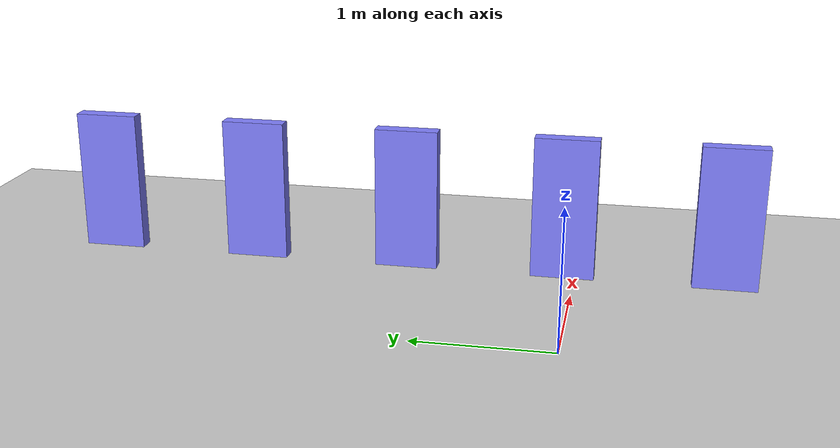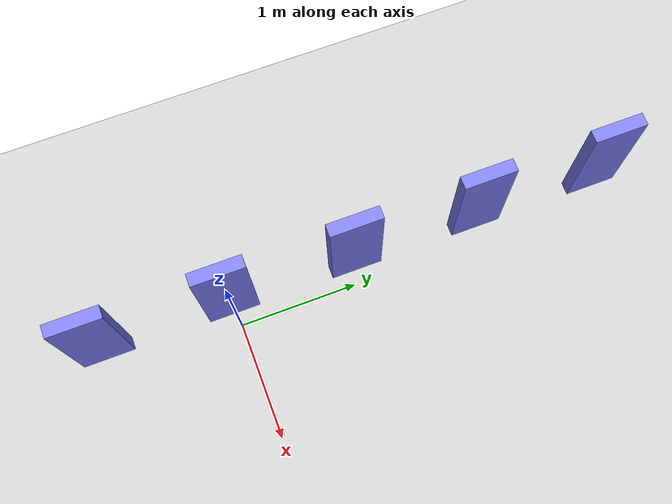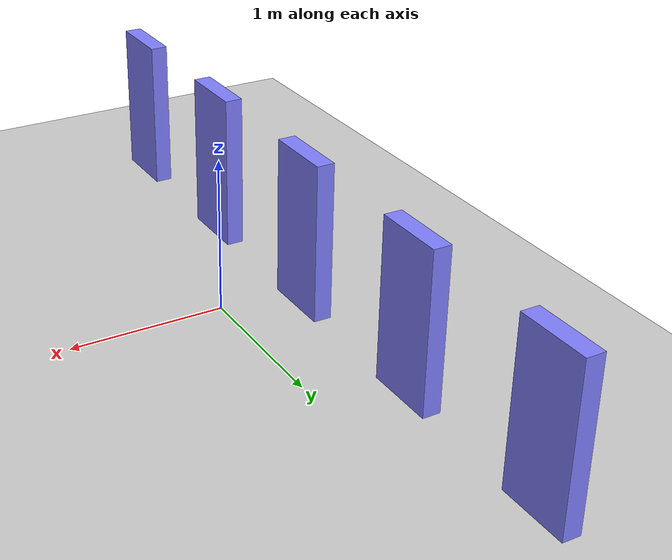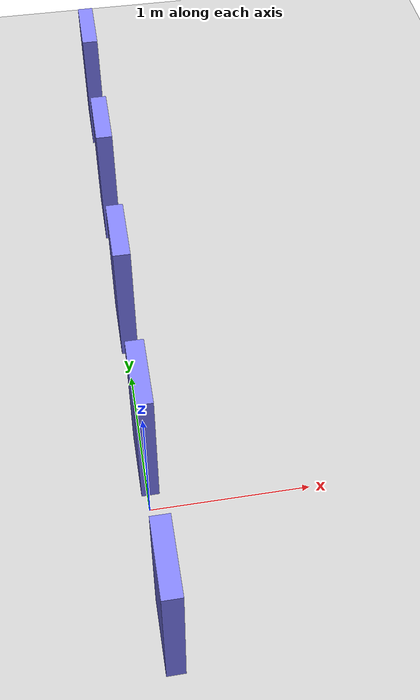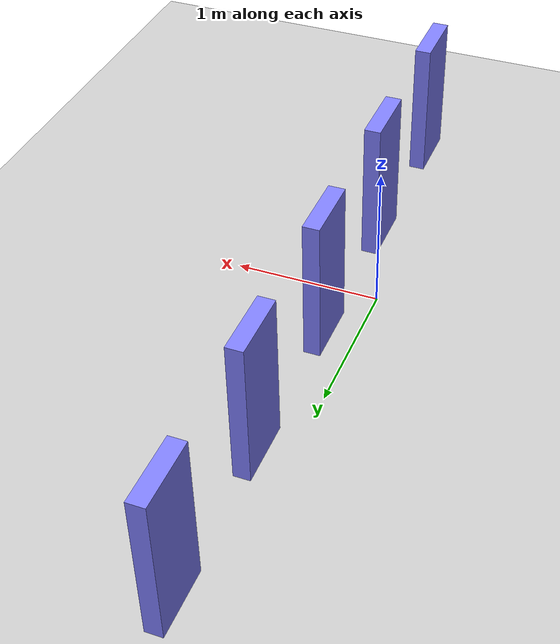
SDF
<?xml version="1.0" ?>
<sdf version="1.11">
  <world name="velocity_control">

    <physics name="1ms" type="ignored">
      <max_step_size>0.001</max_step_size>
      <real_time_factor>1.0</real_time_factor>
    </physics>
    <plugin
      filename="gz-sim-physics-system"
      name="gz::sim::systems::Physics">
    </plugin>
    <plugin
      filename="gz-sim-user-commands-system"
      name="gz::sim::systems::UserCommands">
    </plugin>
    <plugin
      filename="gz-sim-scene-broadcaster-system"
      name="gz::sim::systems::SceneBroadcaster">
    </plugin>

    <light type="directional" name="sun">
      <cast_shadows>true</cast_shadows>
      <pose>0 0 10 0 0 0</pose>
      <diffuse>1 1 1 1</diffuse>
      <specular>0.5 0.5 0.5 1</specular>
      <attenuation>
        <range>1000</range>
        <constant>0.9</constant>
        <linear>0.01</linear>
        <quadratic>0.001</quadratic>
      </attenuation>
      <direction>-0.5 0.1 -0.9</direction>
    </light>

    <model name="ground_plane">
      <static>true</static>
      <link name="link">
        <collision name="collision">
          <geometry>
            <plane>
              <normal>0 0 1</normal>
              <size>100 100</size>
            </plane>
          </geometry>
        </collision>
        <visual name="visual">
          <geometry>
            <plane>
              <normal>0 0 1</normal>
              <size>100 100</size>
            </plane>
          </geometry>
          <material>
            <ambient>0.8 0.8 0.8 1</ambient>
            <diffuse>0.8 0.8 0.8 1</diffuse>
            <specular>0.8 0.8 0.8 1</specular>
          </material>
        </visual>
      </link>
    </model>

    <model name="default_persistent_zero_velocity">
      <pose>0 0 1.0 0 0 0</pose>
      <link name="box_1x4x9">
        <inertial auto="true"/>
        <visual name="visual">
          <geometry>
            <box>
              <size>0.1 0.4 0.9</size>
            </box>
          </geometry>
          <material>
            <ambient>0.5 0.5 1.0 1</ambient>
            <diffuse>0.5 0.5 1.0 1</diffuse>
            <specular>0.0 0.0 1.0 1</specular>
          </material>
        </visual>
        <collision name="collision">
          <geometry>
            <box>
              <size>0.1 0.4 0.9</size>
            </box>
          </geometry>
        </collision>
      </link>
      <plugin
        filename="gz-sim-velocity-control-system"
        name="gz::sim::systems::VelocityControl">
      </plugin>
    </model>

    <model name="persistent_zero_velocity">
      <pose>0 1 1.0 0 0 0</pose>
      <link name="box_1x4x9">
        <inertial auto="true"/>
        <visual name="visual">
          <geometry>
            <box>
              <size>0.1 0.4 0.9</size>
            </box>
          </geometry>
          <material>
            <ambient>0.5 0.5 1.0 1</ambient>
            <diffuse>0.5 0.5 1.0 1</diffuse>
            <specular>0.0 0.0 1.0 1</specular>
          </material>
        </visual>
        <collision name="collision">
          <geometry>
            <box>
              <size>0.1 0.4 0.9</size>
            </box>
          </geometry>
        </collision>
      </link>
      <plugin
        filename="gz-sim-velocity-control-system"
        name="gz::sim::systems::VelocityControl">
        <initial_angular>0 0 0</initial_angular>
        <initial_linear>0 0 0</initial_linear>
      </plugin>
    </model>

    <model name="explicit_persistent_zero_velocity">
      <pose>0 2 1.0 0 0 0</pose>
      <link name="box_1x4x9">
        <inertial auto="true"/>
        <visual name="visual">
          <geometry>
            <box>
              <size>0.1 0.4 0.9</size>
            </box>
          </geometry>
          <material>
            <ambient>0.5 0.5 1.0 1</ambient>
            <diffuse>0.5 0.5 1.0 1</diffuse>
            <specular>0.0 0.0 1.0 1</specular>
          </material>
        </visual>
        <collision name="collision">
          <geometry>
            <box>
              <size>0.1 0.4 0.9</size>
            </box>
          </geometry>
        </collision>
      </link>
      <plugin
        filename="gz-sim-velocity-control-system"
        name="gz::sim::systems::VelocityControl">
        <initial_angular persistent="true">0 0 0</initial_angular>
        <initial_linear persistent="true">0 0 0</initial_linear>
      </plugin>
    </model>

    <model name="initial_zero_velocity">
      <pose>0 3 1.0 0 0 0</pose>
      <link name="box_1x4x9">
        <inertial auto="true"/>
        <visual name="visual">
          <geometry>
            <box>
              <size>0.1 0.4 0.9</size>
            </box>
          </geometry>
          <material>
            <ambient>0.5 0.5 1.0 1</ambient>
            <diffuse>0.5 0.5 1.0 1</diffuse>
            <specular>0.0 0.0 1.0 1</specular>
          </material>
        </visual>
        <collision name="collision">
          <geometry>
            <box>
              <size>0.1 0.4 0.9</size>
            </box>
          </geometry>
        </collision>
      </link>
      <plugin
        filename="gz-sim-velocity-control-system"
        name="gz::sim::systems::VelocityControl">
        <initial_angular persistent="false">0 0 0</initial_angular>
        <initial_linear persistent="false">0 0 0</initial_linear>
      </plugin>
    </model>

    <model name="initial_nonzero_velocity">
      <pose>0 -1 1.0 0 0 0</pose>
      <link name="box_1x4x9">
        <inertial auto="true"/>
        <visual name="visual">
          <geometry>
            <box>
              <size>0.1 0.4 0.9</size>
            </box>
          </geometry>
          <material>
            <ambient>0.5 0.5 1.0 1</ambient>
            <diffuse>0.5 0.5 1.0 1</diffuse>
            <specular>0.0 0.0 1.0 1</specular>
          </material>
        </visual>
        <collision name="collision">
          <geometry>
            <box>
              <size>0.1 0.4 0.9</size>
            </box>
          </geometry>
        </collision>
      </link>
      <plugin
        filename="gz-sim-velocity-control-system"
        name="gz::sim::systems::VelocityControl">
        <initial_angular persistent="false">0.1 5 0.1</initial_angular>
        <initial_linear persistent="false">4 -2 10</initial_linear>
      </plugin>
    </model>

  </world>
</sdf>
